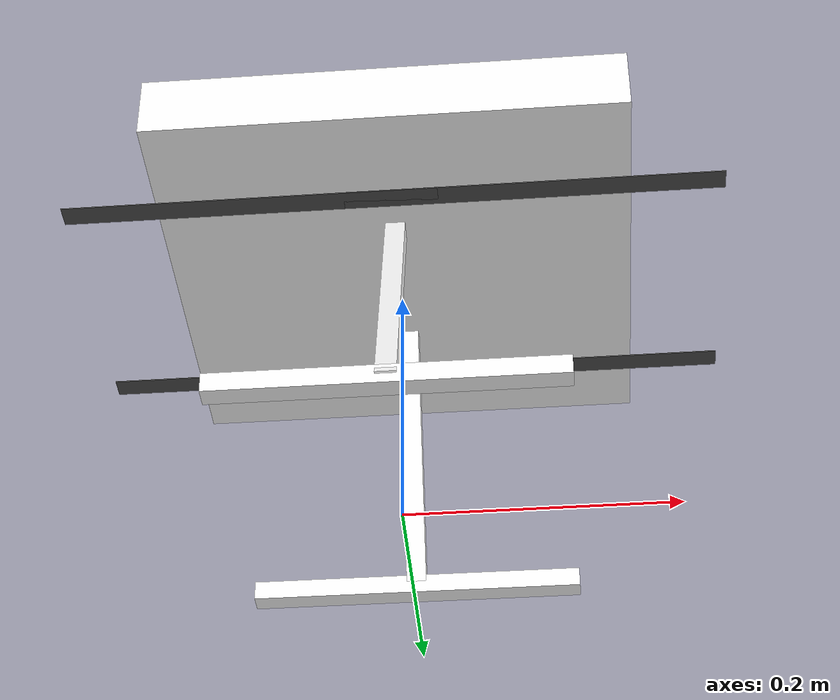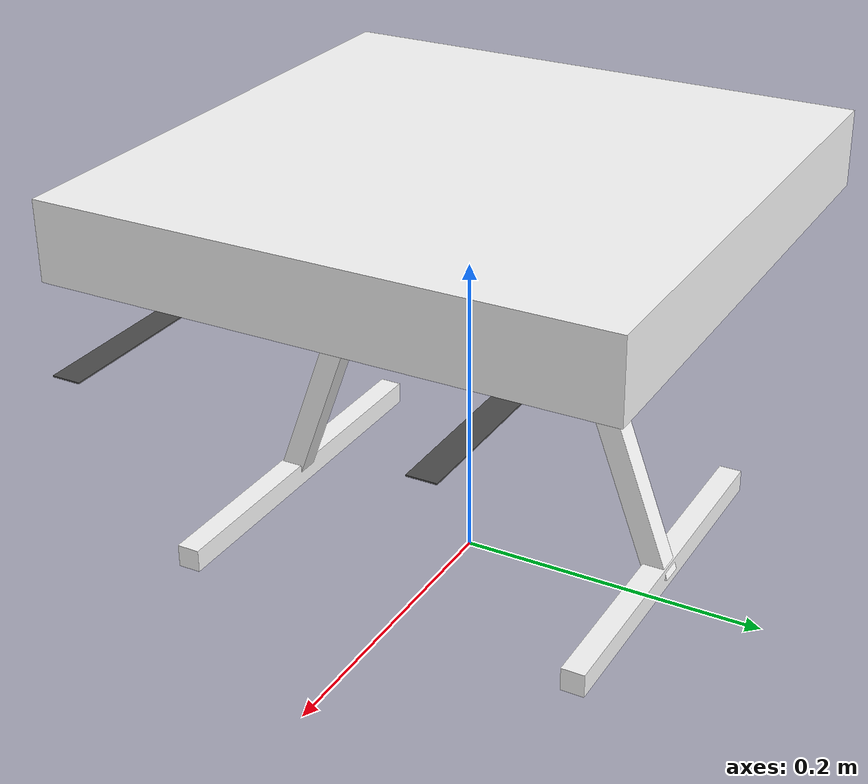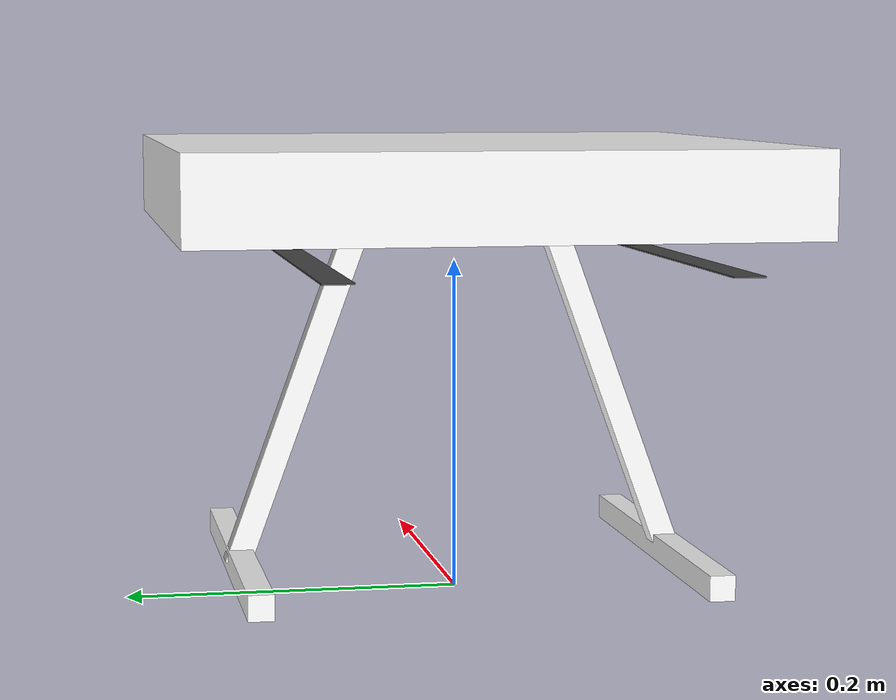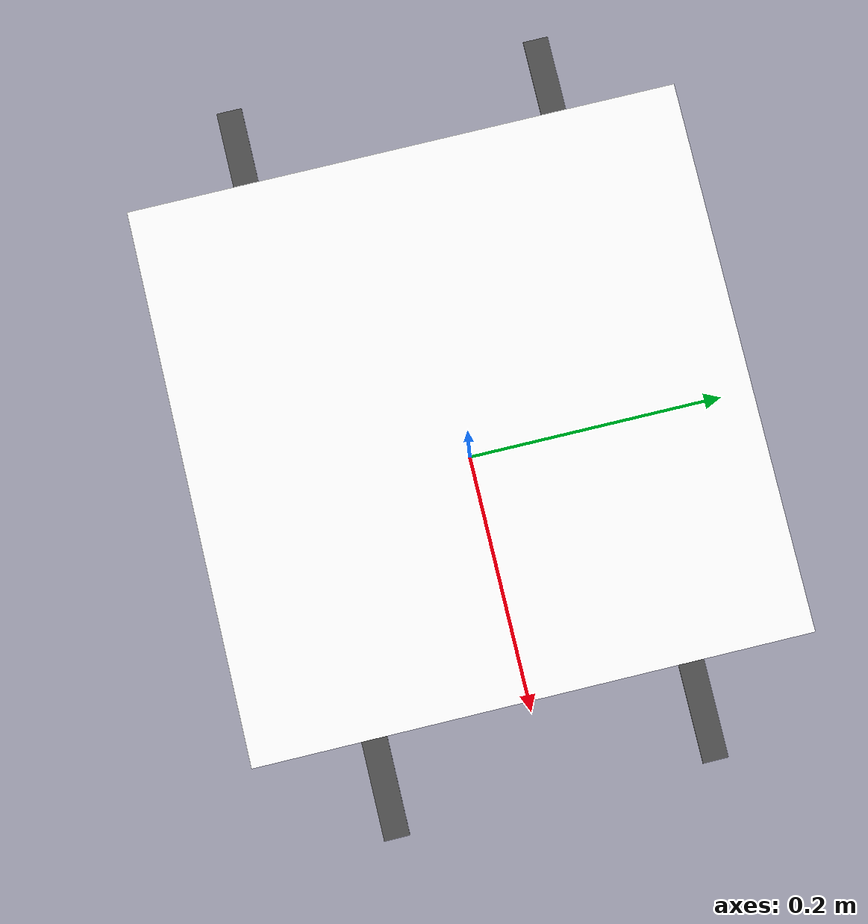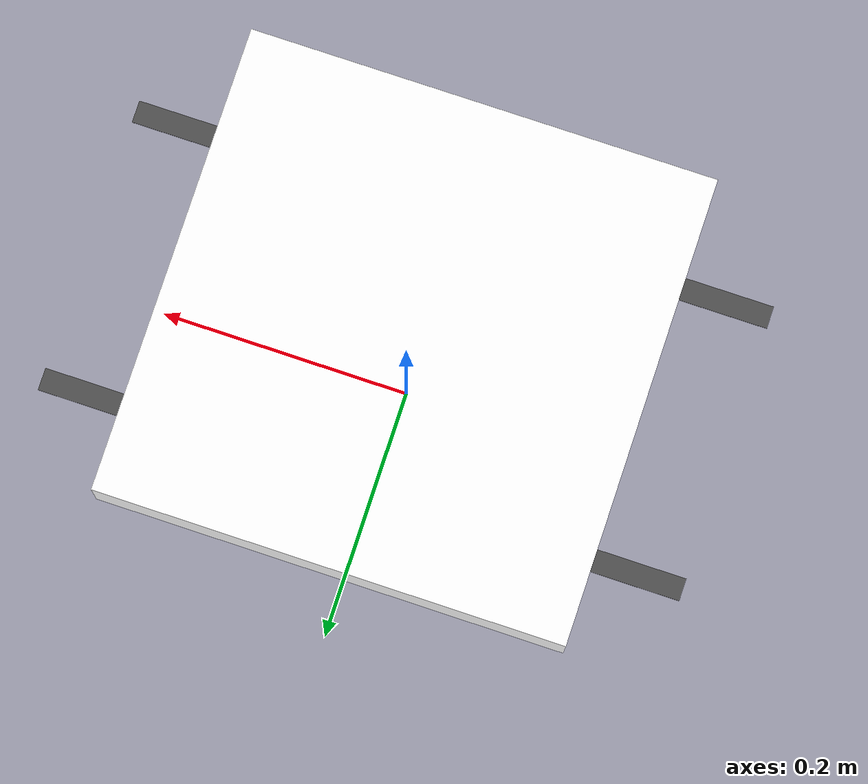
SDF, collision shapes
<?xml version="1.0" encoding="UTF-8"?>
<sdf version='1.9'>
  <model name='x500'>
    <include merge='true'>
      <uri>model://x500_base</uri>
    </include>
    <plugin filename="gz-sim-multicopter-motor-model-system"
      name="gz::sim::systems::MulticopterMotorModel">
      <jointName>rotor_0_joint</jointName>
      <linkName>rotor_0</linkName>
      <turningDirection>ccw</turningDirection>
      <timeConstantUp>0.0125</timeConstantUp>
      <timeConstantDown>0.025</timeConstantDown>
      <maxRotVelocity>2723.0</maxRotVelocity>
      <motorConstant>3.5277e-06</motorConstant>
      <momentConstant>0.07</momentConstant>
      <commandSubTopic>command/motor_speed</commandSubTopic>
      <motorNumber>0</motorNumber>
      <rotorDragCoefficient>0.0e-05</rotorDragCoefficient>
      <rollingMomentCoefficient>0.0e-09</rollingMomentCoefficient>
      <rotorVelocitySlowdownSim>10</rotorVelocitySlowdownSim>
      <motorType>velocity</motorType>
    </plugin>
    <plugin filename="gz-sim-multicopter-motor-model-system"
      name="gz::sim::systems::MulticopterMotorModel">
      <jointName>rotor_1_joint</jointName>
      <linkName>rotor_1</linkName>
      <turningDirection>ccw</turningDirection>
      <timeConstantUp>0.0125</timeConstantUp>
      <timeConstantDown>0.025</timeConstantDown>
      <maxRotVelocity>2723.0</maxRotVelocity>
      <motorConstant>3.5277e-06</motorConstant>
      <momentConstant>0.07</momentConstant>
      <commandSubTopic>command/motor_speed</commandSubTopic>
      <motorNumber>1</motorNumber>
      <rotorDragCoefficient>0.0e-05</rotorDragCoefficient>
      <rollingMomentCoefficient>0.0e-09</rollingMomentCoefficient>
      <rotorVelocitySlowdownSim>10</rotorVelocitySlowdownSim>
      <motorType>velocity</motorType>
    </plugin>
    <plugin filename="gz-sim-multicopter-motor-model-system"
      name="gz::sim::systems::MulticopterMotorModel">
      <jointName>rotor_2_joint</jointName>
      <linkName>rotor_2</linkName>
      <turningDirection>cw</turningDirection>
      <timeConstantUp>0.0125</timeConstantUp>
      <timeConstantDown>0.025</timeConstantDown>
      <maxRotVelocity>2723.0</maxRotVelocity>
      <motorConstant>3.5277e-06</motorConstant>
      <momentConstant>0.07</momentConstant>
      <commandSubTopic>command/motor_speed</commandSubTopic>
      <motorNumber>2</motorNumber>
      <rotorDragCoefficient>0.0e-05</rotorDragCoefficient>
      <rollingMomentCoefficient>0.0e-09</rollingMomentCoefficient>
      <rotorVelocitySlowdownSim>10</rotorVelocitySlowdownSim>
      <motorType>velocity</motorType>
    </plugin>
    <plugin filename="gz-sim-multicopter-motor-model-system"
      name="gz::sim::systems::MulticopterMotorModel">
      <jointName>rotor_3_joint</jointName>
      <linkName>rotor_3</linkName>
      <turningDirection>cw</turningDirection>
      <timeConstantUp>0.0125</timeConstantUp>
      <timeConstantDown>0.025</timeConstantDown>
      <maxRotVelocity>2723.0</maxRotVelocity>
      <motorConstant>3.5277e-06</motorConstant>
      <momentConstant>0.07</momentConstant>
      <commandSubTopic>command/motor_speed</commandSubTopic>
      <motorNumber>3</motorNumber>
      <rotorDragCoefficient>0.0e-05</rotorDragCoefficient>
      <rollingMomentCoefficient>0.0e-09</rollingMomentCoefficient>
      <rotorVelocitySlowdownSim>10</rotorVelocitySlowdownSim>
      <motorType>velocity</motorType>
    </plugin>
    <plugin filename="MotorFailurePlugin"
      name="gz::sim::systems::MotorFailureSystem">
    </plugin>
  </model>
</sdf>

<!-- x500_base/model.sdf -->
<sdf version='1.9'>
  <model name='x500_base'>
    <pose>0 0 .24 0 0 0</pose>
    <self_collide>false</self_collide>
    <static>false</static>
    <link name="base_link">
      <inertial>
        <mass>2.9</mass>
        <inertia>
          <ixx>0.00396</ixx>
          <ixy>0</ixy>
          <ixz>0</ixz>
          <iyy>0.003845</iyy>
          <iyz>0</iyz>
          <izz>0.007350</izz>
        </inertia>
      </inertial>
      <gravity>true</gravity>
      <velocity_decay />
      <visual name="base_link_visual">
        <pose>0 0 .025 0 0 3.141592654</pose>
        <geometry>
          <mesh>
            <scale>0.60 0.60 1</scale>
            <uri>model://x500_base/meshes/NXP-HGD-CF.dae</uri>
          </mesh>
        </geometry>
      </visual>
      <visual name="5010_motor_base_0">
        <pose>0.105 0.105 -0.032 0 0 -.45</pose>
        <geometry>
          <mesh>
            <scale>1 1 1</scale>
            <uri>model://x500_base/meshes/5010Base.dae</uri>
          </mesh>
        </geometry>
      </visual>
      <visual name="5010_motor_base_1">
        <pose>-0.105 0.105 -0.032 0 0 -.45</pose>
        <geometry>
          <mesh>
            <scale>1 1 1</scale>
            <uri>model://x500_base/meshes/5010Base.dae</uri>
          </mesh>
        </geometry>
      </visual>
      <visual name="5010_motor_base_2">
        <pose>0.105 -0.105 -0.032 0 0 -.45</pose>
        <geometry>
          <mesh>
            <scale>1 1 1</scale>
            <uri>model://x500_base/meshes/5010Base.dae</uri>
          </mesh>
        </geometry>
      </visual>
      <visual name="5010_motor_base_3">
        <pose>-0.105 -0.105 -0.032 0 0 -.45</pose>
        <geometry>
          <mesh>
            <scale>1 1 1</scale>
            <uri>model://x500_base/meshes/5010Base.dae</uri>
          </mesh>
        </geometry>
      </visual>
      <visual name="NXP_FMUK66_FRONT">
        <pose>0.047 .001 .043 1 0 1.57</pose>
        <cast_shadows>false</cast_shadows>
        <geometry>
          <plane>
            <normal>0 0 1</normal>
            <size>.013 .007</size>
          </plane>
        </geometry>
        <material>
          <diffuse>1.0 1.0 1.0</diffuse>
          <specular>1.0 1.0 1.0</specular>
          <pbr>
            <metal>
              <albedo_map>model://x500_base/materials/textures/nxp.png</albedo_map>
            </metal>
          </pbr>
        </material>
      </visual>
      <visual name="NXP_FMUK66_TOP">
        <pose>-0.023 0 .0515 0 0 -1.57</pose>
        <cast_shadows>false</cast_shadows>
        <geometry>
          <plane>
            <normal>0 0 1</normal>
            <size>.013 .007</size>
          </plane>
        </geometry>
        <material>
          <diffuse>1.0 1.0 1.0</diffuse>
          <specular>1.0 1.0 1.0</specular>
          <pbr>
            <metal>
              <albedo_map>model://x500_base/materials/textures/nxp.png</albedo_map>
            </metal>
          </pbr>
        </material>
      </visual>
      <visual name="RDDRONE_FMUK66_TOP">
        <pose>-.03 0 .0515 0 0 -1.57</pose>
        <cast_shadows>false</cast_shadows>
        <geometry>
          <plane>
            <normal>0 0 1</normal>
            <size>.032 .0034</size>
          </plane>
        </geometry>
        <material>
          <diffuse>1.0 1.0 1.0</diffuse>
          <specular>1.0 1.0 1.0</specular>
          <pbr>
            <metal>
              <albedo_map>model://x500_base/materials/textures/rd.png</albedo_map>
            </metal>
          </pbr>
        </material>
      </visual>
      <collision name="base_link_collision_0">
        <pose>0 0 .007 0 0 0</pose>
        <geometry>
          <box>
            <size>0.35355339059327373 0.35355339059327373 0.05</size>
          </box>
        </geometry>
        <surface>
          <contact>
            <ode>
              <min_depth>0.001</min_depth>
              <max_vel>0</max_vel>
            </ode>
          </contact>
          <friction>
            <ode />
          </friction>
        </surface>
      </collision>
      <collision name="base_link_collision_1">
        <pose>0 -0.098 -.123 -0.35 0 0</pose>
        <geometry>
          <box>
            <size>0.015 0.015 0.21</size>
          </box>
        </geometry>
        <surface>
          <contact>
            <ode>
              <min_depth>0.001</min_depth>
              <max_vel>0</max_vel>
            </ode>
          </contact>
          <friction>
            <ode />
          </friction>
        </surface>
      </collision>
      <collision name="base_link_collision_2">
        <pose>0 0.098 -.123 0.35 0 0</pose>
        <geometry>
          <box>
            <size>0.015 0.015 0.21</size>
          </box>
        </geometry>
        <surface>
          <contact>
            <ode>
              <min_depth>0.001</min_depth>
              <max_vel>0</max_vel>
            </ode>
          </contact>
          <friction>
            <ode />
          </friction>
        </surface>
      </collision>
      <collision name="base_link_collision_3">
        <pose>0 -0.132 -.2195 0 0 0</pose>
        <geometry>
          <box>
            <size>0.25 0.015 0.015</size>
          </box>
        </geometry>
        <surface>
          <contact>
            <ode>
              <min_depth>0.001</min_depth>
              <max_vel>0</max_vel>
            </ode>
          </contact>
          <friction>
            <ode />
          </friction>
        </surface>
      </collision>
      <collision name="base_link_collision_4">
        <pose>0 0.132 -.2195 0 0 0</pose>
        <geometry>
          <box>
            <size>0.25 0.015 0.015</size>
          </box>
        </geometry>
        <surface>
          <contact>
            <ode>
              <min_depth>0.001</min_depth>
              <max_vel>0</max_vel>
            </ode>
          </contact>
          <friction>
            <ode />
          </friction>
        </surface>
      </collision>
      <sensor name="air_pressure_sensor" type="air_pressure">
        <gz_frame_id>base_link</gz_frame_id>
        <always_on>1</always_on>
        <update_rate>50</update_rate>
        <air_pressure>
          <!-- Noise modeled after BMP390 -->
          <pressure>
            <noise type="gaussian">
              <mean>0</mean>
              <stddev>3</stddev>
            </noise>
          </pressure>
        </air_pressure>
      </sensor>
      <sensor name="magnetometer_sensor" type="magnetometer">
        <gz_frame_id>base_link</gz_frame_id>
        <always_on>1</always_on>
        <update_rate>100</update_rate>
        <magnetometer>
          <!-- TODO: update to fix units and coordinate system when we move past Harmonic -->
          <!-- See https://github.com/gazebosim/gz-sim/pull/2460 -->
          <!-- 3mgauss RMS: NOTE: noise is in tesla but sensor reports data in gauss -->
          <!-- Noise modeled after IIS2MDC -->
          <x>
            <noise type="gaussian">
              <stddev>0.0001</stddev>
            </noise>
          </x>
          <y>
            <noise type="gaussian">
              <stddev>0.0001</stddev>
            </noise>
          </y>
          <z>
            <noise type="gaussian">
              <stddev>0.0001</stddev>
            </noise>
          </z>
        </magnetometer>
      </sensor>
      <sensor name="imu_sensor" type="imu">
        <gz_frame_id>base_link</gz_frame_id>
        <always_on>1</always_on>
        <update_rate>250</update_rate>
        <imu>
          <angular_velocity>
            <!-- Noise modeled after IIM42653 -->
            <!-- 0.05 deg/s converted to rad/s -->
            <x>
              <noise type="gaussian">
                <mean>0.0</mean>
                <stddev>0.0008726646</stddev>
              </noise>
            </x>
            <y>
              <noise type="gaussian">
                <mean>0.0</mean>
                <stddev>0.0008726646</stddev>
              </noise>
            </y>
            <z>
              <noise type="gaussian">
                <mean>0.0</mean>
                <stddev>0.0008726646</stddev>
              </noise>
            </z>
          </angular_velocity>
          <linear_acceleration>
            <!-- Noise modeled after IIM42653 -->
            <!-- X & Y axis: 0.65 mg-rms converted to m/ss -->
            <x>
              <noise type="gaussian">
                <mean>0.0</mean>
                <stddev>0.00637</stddev>
              </noise>
            </x>
            <y>
              <noise type="gaussian">
                <mean>0.0</mean>
                <stddev>0.00637</stddev>
              </noise>
            </y>
            <!-- Z axis: 0.70 mg-rms converted to m/ss-->
            <z>
              <noise type="gaussian">
                <mean>0.0</mean>
                <stddev>0.00686</stddev>
              </noise>
            </z>
          </linear_acceleration>
        </imu>
      </sensor>
      <sensor name="navsat_sensor" type="navsat">
        <gz_frame_id>base_link</gz_frame_id>
        <always_on>1</always_on>
        <update_rate>30</update_rate>
      </sensor>
    </link>
    <link name="rotor_0">
      <gravity>true</gravity>
      <self_collide>false</self_collide>
      <velocity_decay />
      <pose>0.105 -0.105 -0.03 0 0 0</pose>
      <inertial>
        <mass>0.016076923076923075</mass>
        <inertia>
          <ixx>3.8464910483993325e-07</ixx>
          <iyy>2.6115851691700804e-05</iyy>
          <izz>2.649858234714004e-05</izz>
        </inertia>
      </inertial>
      <visual name="rotor_0_visual">
        <pose>-0.022 -0.14638461538461536 -0.016 0 0 0</pose>
        <geometry>
          <mesh>
            <scale>0.8461538461538461 0.8461538461538461 0.8461538461538461</scale>
            <uri>model://x500_base/meshes/1345_prop_ccw.stl</uri>
          </mesh>
        </geometry>
        <material>
          <script>
            <name>Gazebo/DarkGrey</name>
            <uri>file://media/materials/scripts/gazebo.material</uri>
          </script>
        </material>
      </visual>
      <visual name="rotor_0_visual_motor_bell">
        <pose>0 0 -.032 0 0 0</pose>
        <geometry>
          <mesh>
            <scale>1 1 1</scale>
            <uri>model://x500_base/meshes/5010Bell.dae</uri>
          </mesh>
        </geometry>
      </visual>
      <collision name="rotor_0_collision">
        <pose>0 0 0 0 0 0 </pose>
        <geometry>
          <box>
            <size>0.2792307692307692 0.016923076923076923 0.0008461538461538462</size>
          </box>
        </geometry>
        <surface>
          <contact>
            <ode>
              <min_depth>0.001</min_depth>
              <max_vel>0</max_vel>
            </ode>
          </contact>
          <friction>
            <ode />
          </friction>
        </surface>
      </collision>
    </link>
    <joint name="rotor_0_joint" type="revolute">
      <parent>base_link</parent>
      <child>rotor_0</child>
      <axis>
        <xyz>0 0 1</xyz>
        <limit>
          <lower>-1e+16</lower>
          <upper>1e+16</upper>
        </limit>
        <dynamics>
          <spring_reference>0</spring_reference>
          <spring_stiffness>0</spring_stiffness>
        </dynamics>
      </axis>
    </joint>
    <link name="rotor_1">
      <gravity>true</gravity>
      <self_collide>false</self_collide>
      <velocity_decay />
      <pose>-0.105 0.105 -0.03 0 0 0</pose>
      <inertial>
        <mass>0.016076923076923075</mass>
        <inertia>
          <ixx>3.8464910483993325e-07</ixx>
          <iyy>2.6115851691700804e-05</iyy>
          <izz>2.649858234714004e-05</izz>
        </inertia>
      </inertial>
      <visual name="rotor_1_visual">
        <pose>-0.022 -0.14638461538461536 -0.016 0 0 0</pose>
        <geometry>
          <mesh>
            <scale>0.8461538461538461 0.8461538461538461 0.8461538461538461</scale>
            <uri>model://x500_base/meshes/1345_prop_ccw.stl</uri>
          </mesh>
        </geometry>
        <material>
          <script>
            <name>Gazebo/DarkGrey</name>
            <uri>file://media/materials/scripts/gazebo.material</uri>
          </script>
        </material>
      </visual>
      <visual name="rotor_1_visual_motor_top">
        <pose>0 0 -.032 0 0 0</pose>
        <geometry>
          <mesh>
            <scale>1 1 1</scale>
            <uri>model://x500_base/meshes/5010Bell.dae</uri>
          </mesh>
        </geometry>
      </visual>
      <collision name="rotor_1_collision">
        <pose>0 0 0 0 0 0 </pose>
        <geometry>
          <box>
            <size>0.2792307692307692 0.016923076923076923 0.0008461538461538462</size>
          </box>
        </geometry>
        <surface>
          <contact>
            <ode>
              <min_depth>0.001</min_depth>
              <max_vel>0</max_vel>
            </ode>
          </contact>
          <friction>
            <ode />
          </friction>
        </surface>
      </collision>
    </link>
    <joint name="rotor_1_joint" type="revolute">
      <parent>base_link</parent>
      <child>rotor_1</child>
      <axis>
        <xyz>0 0 1</xyz>
        <limit>
          <lower>-1e+16</lower>
          <upper>1e+16</upper>
        </limit>
        <dynamics>
          <spring_reference>0</spring_reference>
          <spring_stiffness>0</spring_stiffness>
        </dynamics>
      </axis>
    </joint>
    <link name="rotor_2">
      <gravity>true</gravity>
      <self_collide>false</self_collide>
      <velocity_decay />
      <pose>0.105 0.105 -0.03 0 0 0</pose>
      <inertial>
        <mass>0.016076923076923075</mass>
        <inertia>
          <ixx>3.8464910483993325e-07</ixx>
          <iyy>2.6115851691700804e-05</iyy>
          <izz>2.649858234714004e-05</izz>
        </inertia>
      </inertial>
      <visual name="rotor_2_visual">
        <pose>-0.022 -0.14638461538461536 -0.016 0 0 0</pose>
        <geometry>
          <mesh>
            <scale>0.8461538461538461 0.8461538461538461 0.8461538461538461</scale>
            <uri>model://x500_base/meshes/1345_prop_cw.stl</uri>
          </mesh>
        </geometry>
        <material>
          <script>
            <name>Gazebo/DarkGrey</name>
            <uri>file://media/materials/scripts/gazebo.material</uri>
          </script>
        </material>
      </visual>
      <visual name="rotor_2_visual_motor_top">
        <pose>0 0 -.032 0 0 0</pose>
        <geometry>
          <mesh>
            <scale>1 1 1</scale>
            <uri>model://x500_base/meshes/5010Bell.dae</uri>
          </mesh>
        </geometry>
      </visual>
      <collision name="rotor_2_collision">
        <pose>0 0 0 0 0 0 </pose>
        <geometry>
          <box>
            <size>0.2792307692307692 0.016923076923076923 0.0008461538461538462</size>
          </box>
        </geometry>
        <surface>
          <contact>
            <ode>
              <min_depth>0.001</min_depth>
              <max_vel>0</max_vel>
            </ode>
          </contact>
          <friction>
            <ode />
          </friction>
        </surface>
      </collision>
    </link>
    <joint name="rotor_2_joint" type="revolute">
      <parent>base_link</parent>
      <child>rotor_2</child>
      <axis>
        <xyz>0 0 1</xyz>
        <limit>
          <lower>-1e+16</lower>
          <upper>1e+16</upper>
        </limit>
        <dynamics>
          <spring_reference>0</spring_reference>
          <spring_stiffness>0</spring_stiffness>
        </dynamics>
      </axis>
    </joint>
    <link name="rotor_3">
      <gravity>true</gravity>
      <self_collide>false</self_collide>
      <velocity_decay />
      <pose>-0.105 -0.105 -0.03 0 0 0</pose>
      <inertial>
        <mass>0.016076923076923075</mass>
        <inertia>
          <ixx>3.8464910483993325e-07</ixx>
          <iyy>2.6115851691700804e-05</iyy>
          <izz>2.649858234714004e-05</izz>
        </inertia>
      </inertial>
      <visual name="rotor_3_visual">
        <pose>-0.022 -0.14638461538461536 -0.016 0 0 0</pose>
        <geometry>
          <mesh>
            <scale>0.8461538461538461 0.8461538461538461 0.8461538461538461</scale>
            <uri>model://x500_base/meshes/1345_prop_cw.stl</uri>
          </mesh>
        </geometry>
        <material>
          <script>
            <name>Gazebo/DarkGrey</name>
            <uri>file://media/materials/scripts/gazebo.material</uri>
          </script>
        </material>
      </visual>
      <visual name="rotor_3_visual_motor_top">
        <pose>0 0 -.032 0 0 0</pose>
        <geometry>
          <mesh>
            <scale>1 1 1</scale>
            <uri>model://x500_base/meshes/5010Bell.dae</uri>
          </mesh>
        </geometry>
      </visual>
      <collision name="rotor_3_collision">
        <pose>0 0 0 0 0 0 </pose>
        <geometry>
          <box>
            <size>0.2792307692307692 0.016923076923076923 0.0008461538461538462</size>
          </box>
        </geometry>
        <surface>
          <contact>
            <ode>
              <min_depth>0.001</min_depth>
              <max_vel>0</max_vel>
            </ode>
          </contact>
          <friction>
            <ode />
          </friction>
        </surface>
      </collision>
    </link>
    <joint name="rotor_3_joint" type="revolute">
      <parent>base_link</parent>
      <child>rotor_3</child>
      <axis>
        <xyz>0 0 1</xyz>
        <limit>
          <lower>-1e+16</lower>
          <upper>1e+16</upper>
        </limit>
        <dynamics>
          <spring_reference>0</spring_reference>
          <spring_stiffness>0</spring_stiffness>
        </dynamics>
      </axis>
    </joint>

    <!-- Frame Aerodynamics - Custom Cd/Cl lookup table via CSV       -->
    <!-- Plugin reads x500_base_aero.csv from the same directory as  -->
    <!-- this model.sdf. Three axes are modelled independently:      -->
    <!--   X axis : forward/backward drag (frontal area)             -->
    <!--   Y axis : lateral drag          (frontal area)             -->
    <!--   Z axis : vertical drag         (top-down area)            -->
    <!-- To update aero coefficients, edit x500_base_aero.csv only.  -->
    <!-- CSV format: alpha_rad, Cl, Cd  (header row required)        -->
    <plugin
      filename="AeroPlugin"
      name="AeroPlugin">
      <link_name>base_link</link_name>
      <area>0.02</area>
      <chord>0.08</chord>
      <!-- Path to aero lookup table CSV (relative to model directory) -->
      <aero_table>model://x500_base/x500_base_aero.csv</aero_table>
    </plugin>

  </model>
</sdf>
